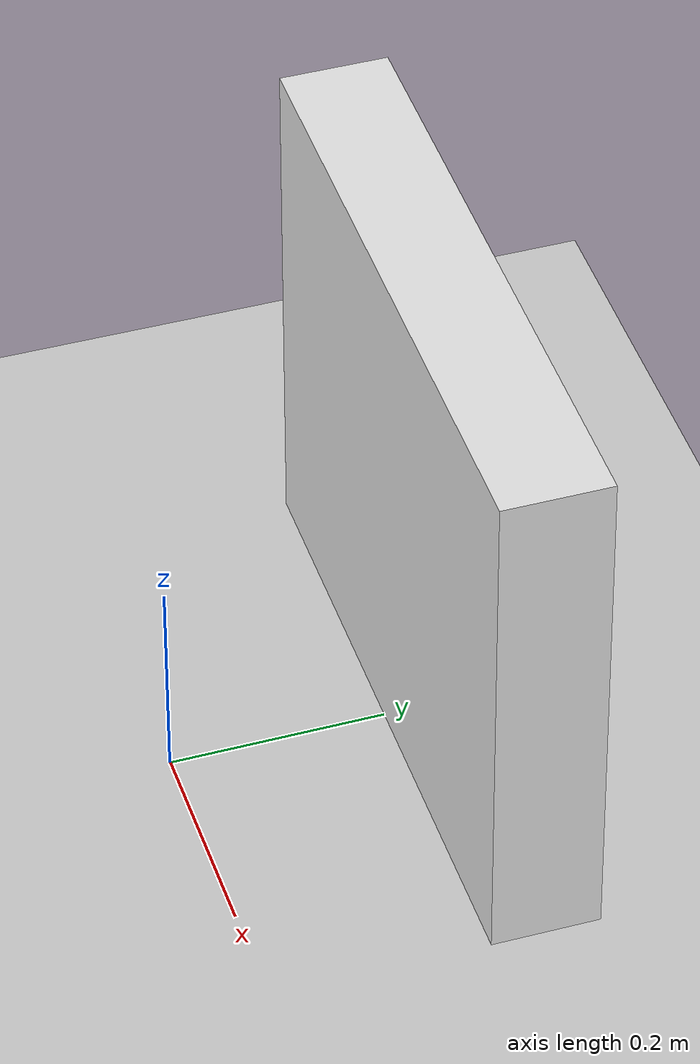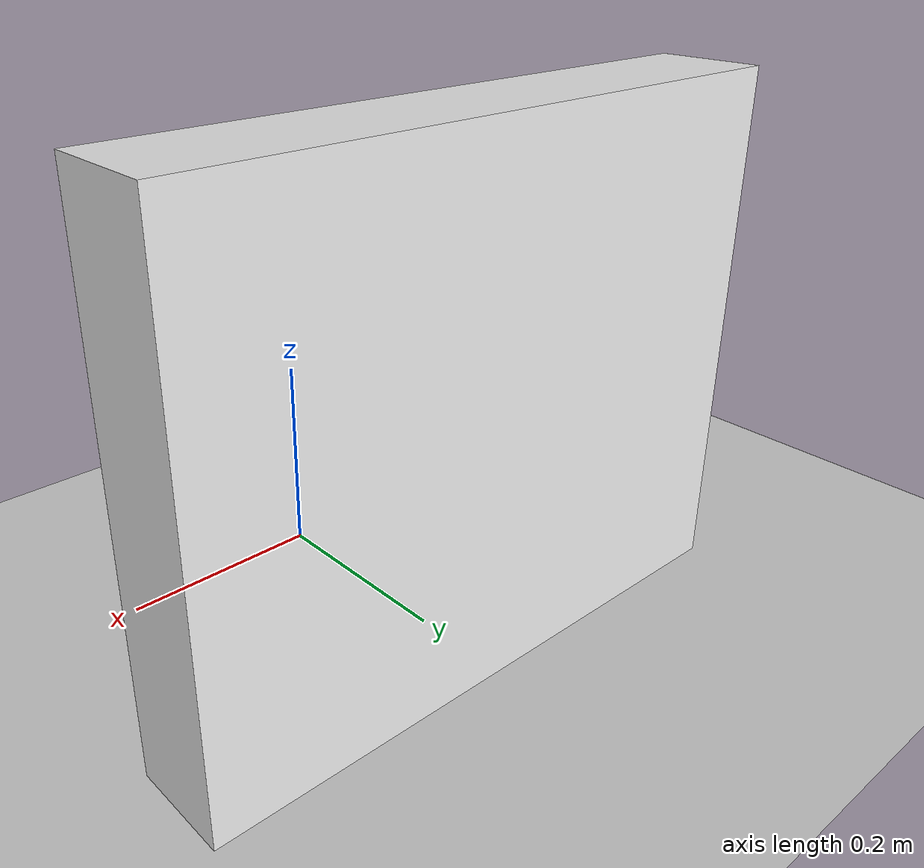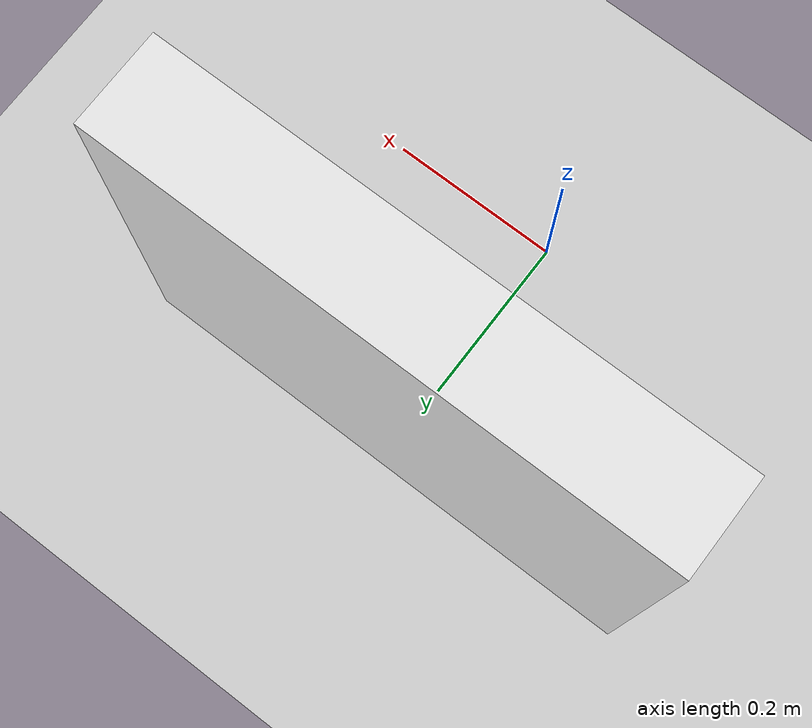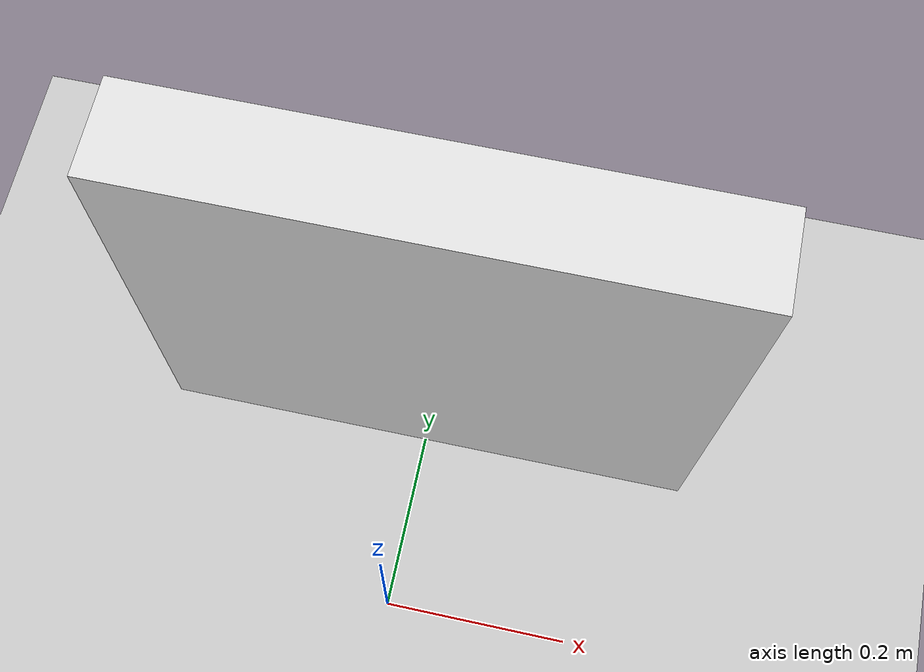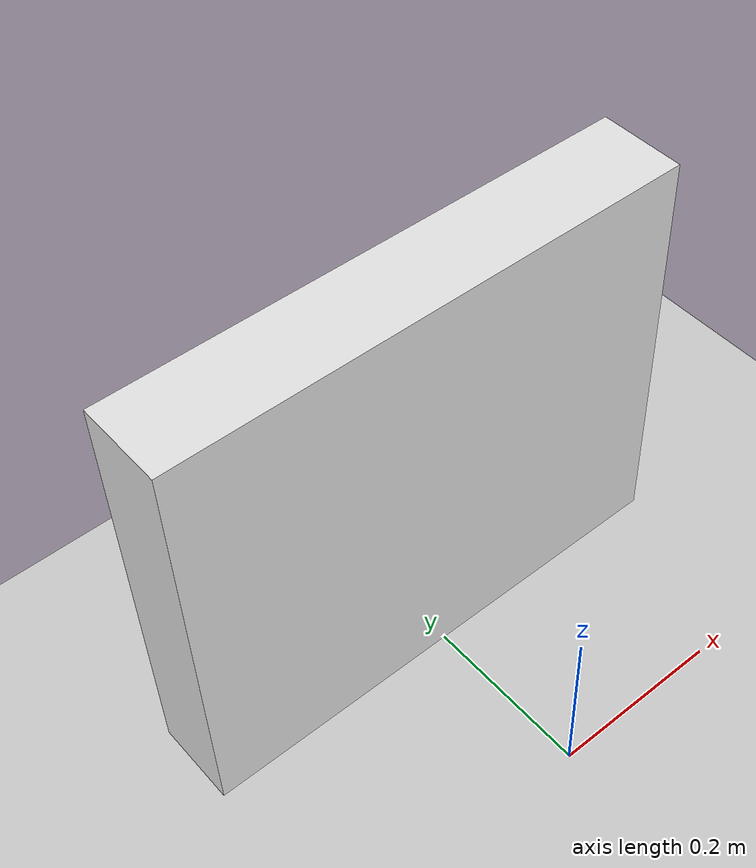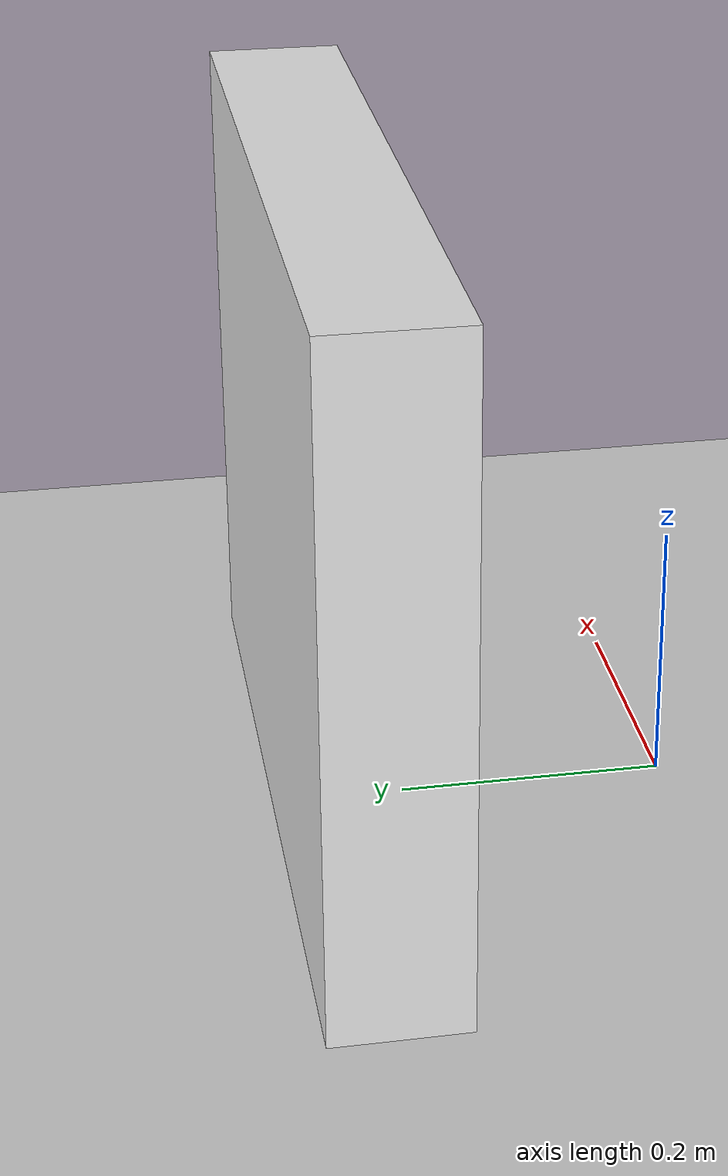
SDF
<sdf version="1.7">
  <world name="map_world">
    <model name="ground_plane">
      <static>1</static>
      <link name="link">
        <collision name="collision">
          <geometry>
            <plane>
              <normal>0 0 1</normal>
              <size>100 100</size>
            </plane>
          </geometry>
          <surface>
            <friction>
              <ode>
                <mu>0.8</mu>
                <mu2>0.8</mu2>
              </ode>
              <torsional>
                <ode/>
              </torsional>
            </friction>
            <contact>
              <ode/>
            </contact>
            <bounce/>
          </surface>
          <max_contacts>10</max_contacts>
        </collision>
        <visual name="visual">
          <cast_shadows>0</cast_shadows>
          <geometry>
            <plane>
              <normal>0 0 1</normal>
              <size>100 100</size>
            </plane>
          </geometry>
          <material>
            <script>
              <uri>file://media/materials/scripts/gazebo.material</uri>
              <name>Gazebo/Grey</name>
            </script>
          </material>
        </visual>
        <self_collide>0</self_collide>
        <enable_wind>0</enable_wind>
        <kinematic>0</kinematic>
      </link>
    </model>

    <gravity>0 0 -9.8</gravity>
    <magnetic_field>6e-06 2.3e-05 -4.2e-05</magnetic_field>
    <atmosphere type="adiabatic"/>

    <physics name="default_physics" default="0" type="ode">
      <max_step_size>0.001</max_step_size>
      <real_time_factor>1</real_time_factor>
      <real_time_update_rate>1000</real_time_update_rate>
    </physics>

    <scene>
      <ambient>0.4 0.4 0.4 1.0</ambient>
      <background>0.7 0.7 0.7 1.0</background>
      <shadows>false</shadows>
    </scene>

    <light name="directional_light" type="directional">
      <cast_shadows>false</cast_shadows>
      <pose>0 0 10 0 0 0</pose>
      <diffuse>0.8 0.8 0.8 1</diffuse>
      <specular>0.2 0.2 0.2 1</specular>
      <direction>0 0 -1</direction>
    </light>

    <model name="map_walls">
      <static>1</static>
      <link name="Wall_0">
        <collision name="Wall_0_Collision">
          <geometry>
            <box><size>0.6 0.1 0.5</size></box>
          </geometry>
          <pose frame="">0 0 0.25 0 -0 0</pose>
          <max_contacts>10</max_contacts>
          <surface>
            <contact>
              <ode/>
            </contact>
            <bounce/>
            <friction>
              <torsional>
                <ode/>
              </torsional>
              <ode/>
            </friction>
          </surface>
        </collision>
        <visual name="Wall_0_Visual">
          <pose frame="">0 0 0.25 0 -0 0</pose>
          <geometry>
            <box><size>0.6 0.1 0.5</size></box>
          </geometry>
          <material>
            <ambient>0.9 0.9 0.9 1</ambient>
            <diffuse>0.9 0.9 0.9 1</diffuse>
          </material>
        </visual>
        <pose frame="">0 0.25 0 0 -0 0</pose>
        <self_collide>0</self_collide>
        <enable_wind>0</enable_wind>
        <kinematic>1</kinematic>
      </link>
    </model>
  </world>
</sdf>
